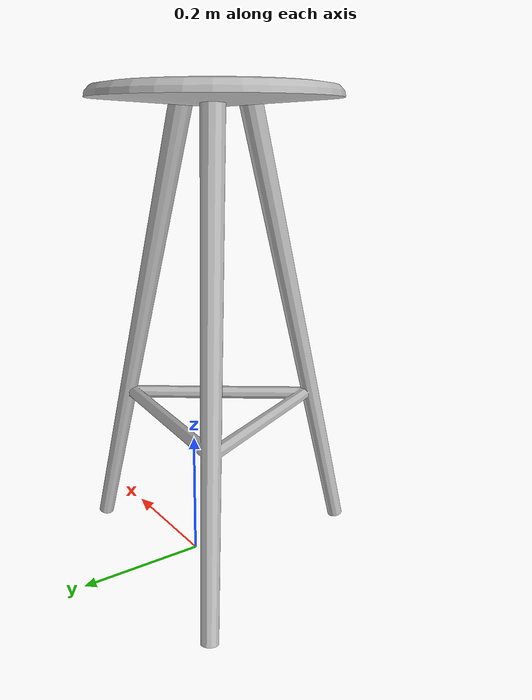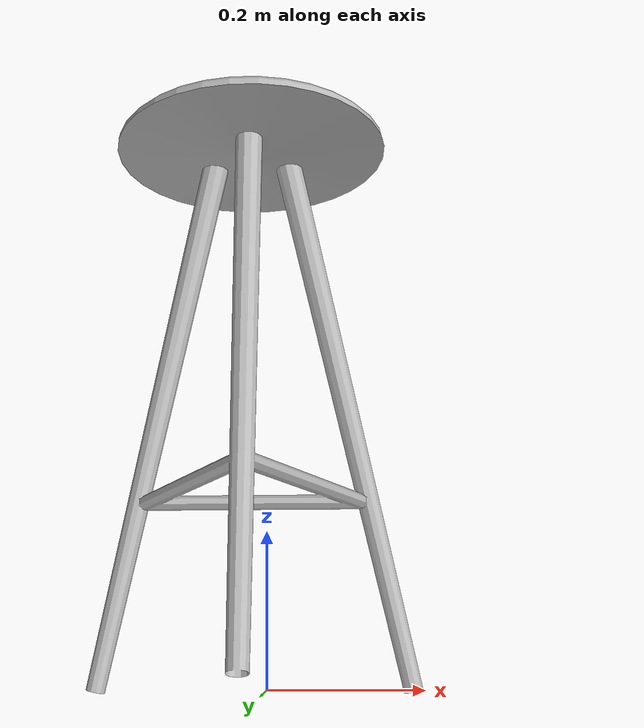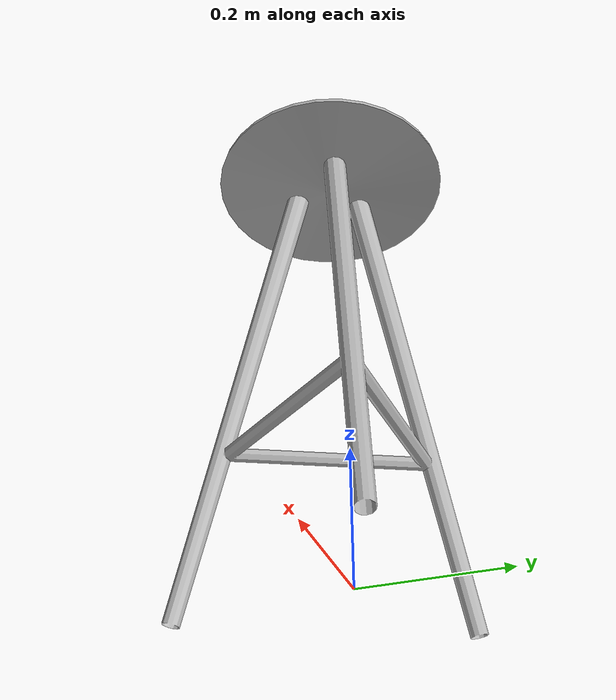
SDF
<?xml version="1.0" ?>
<sdf version="1.6">
  <model name="aws_robomaker_retail_ChairB_01">
    <link name="link">
      <inertial>
        <mass>3</mass>
        <inertia>
          <ixx>0.188185</ixx>
          <ixy>0</ixy>
          <ixz>0</ixz>
          <iyy>0.1906168</iyy>
          <iyz>0</iyz>
          <izz>0.10099930</izz>
        </inertia>
      </inertial>
      <collision name="collision">
        <geometry>
          <mesh>
            <uri>file://models/aws_robomaker_retail_ChairB_01/meshes/aws_ChairB_01_collision.DAE</uri>
            <scale>1 1 1</scale>
          </mesh>
        </geometry>
      </collision>
      <visual name="visual">
	    <geometry>
          <mesh>
            <uri>file://models/aws_robomaker_retail_ChairB_01/meshes/aws_ChairB_01_visual.DAE</uri>
          </mesh>
        </geometry>
        <meta>
          <layer>1</layer>
        </meta>
      </visual>
</link>
      <static>1</static>
  </model>
</sdf>
